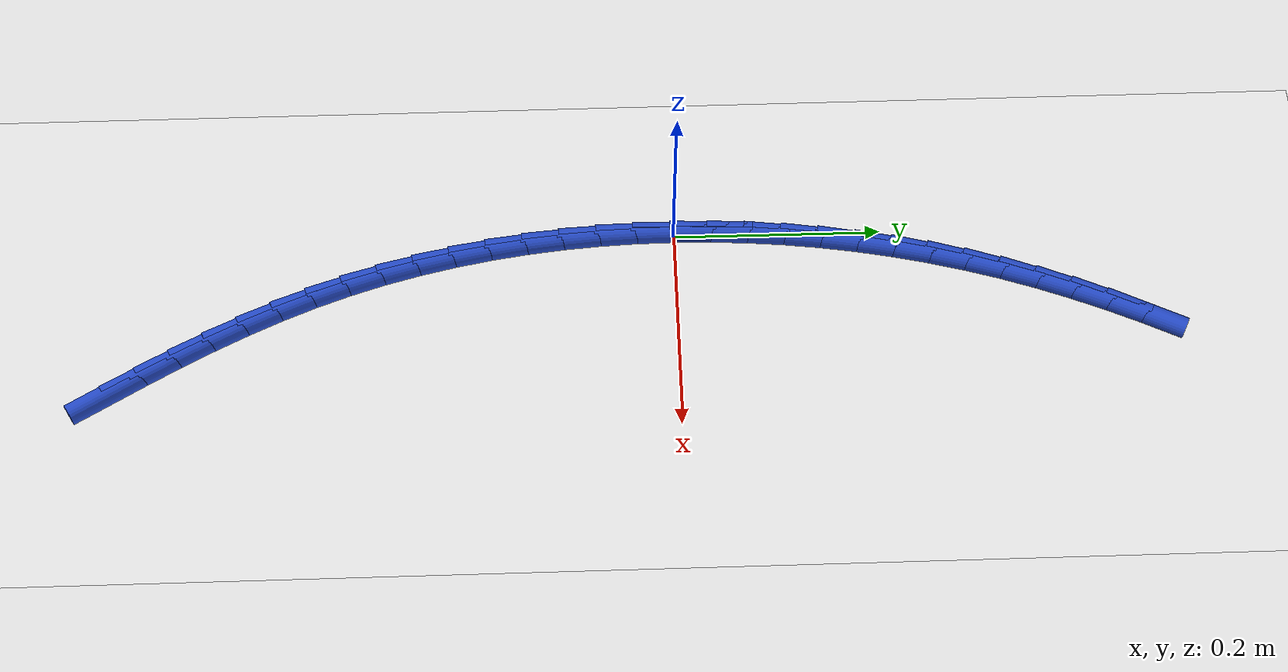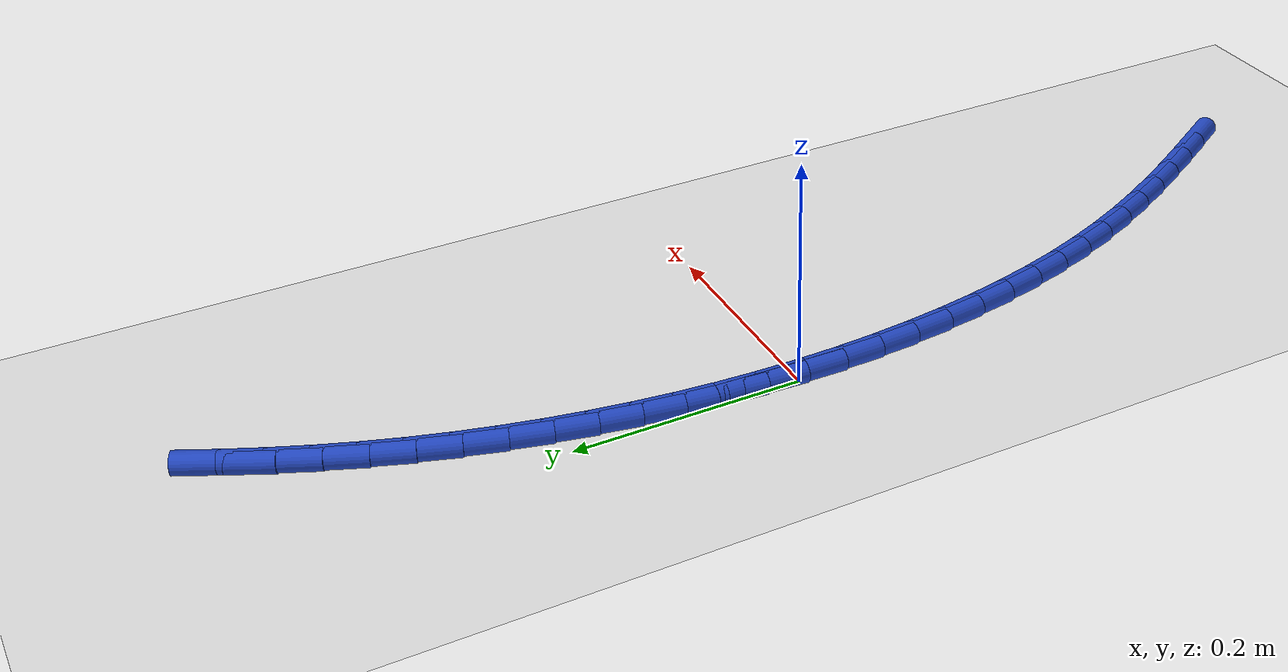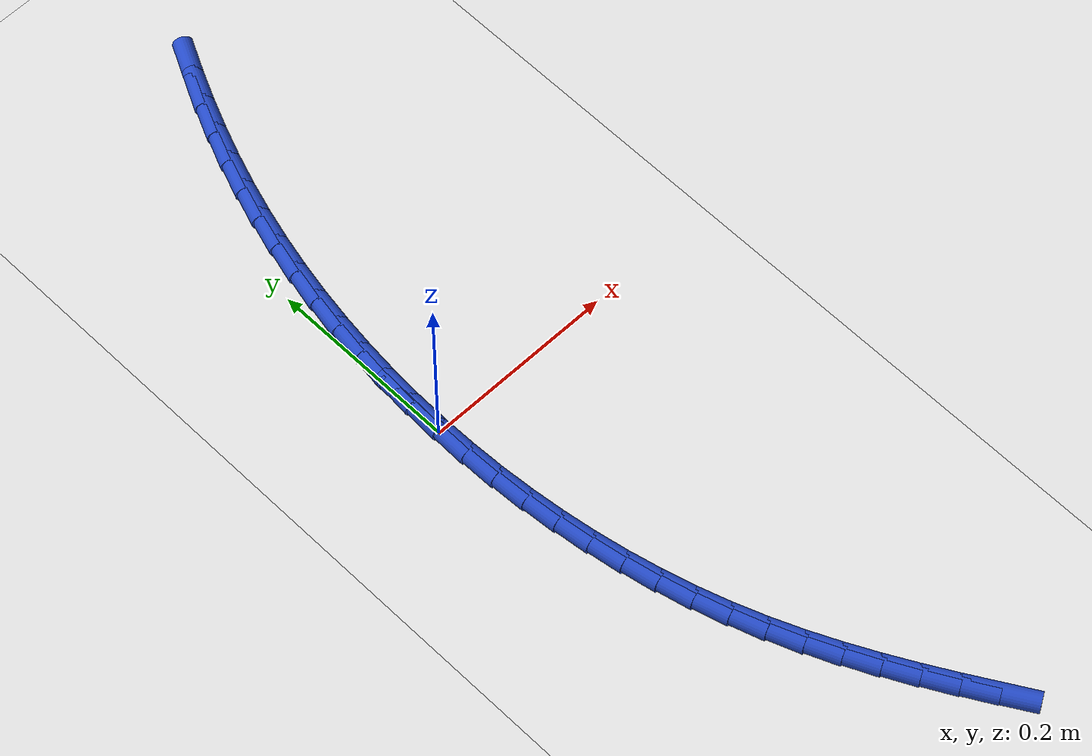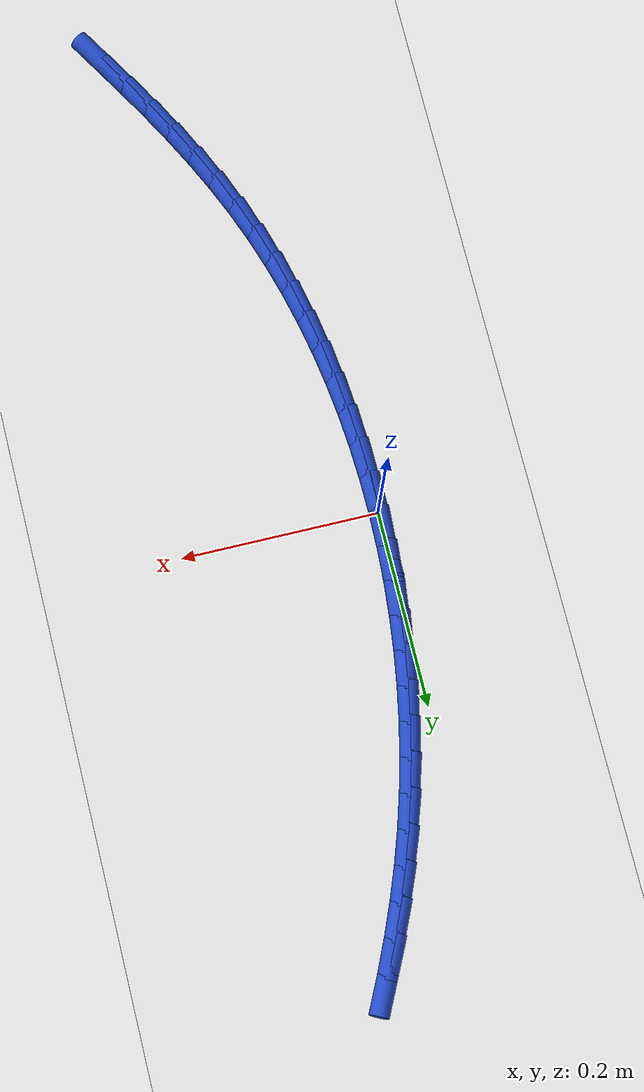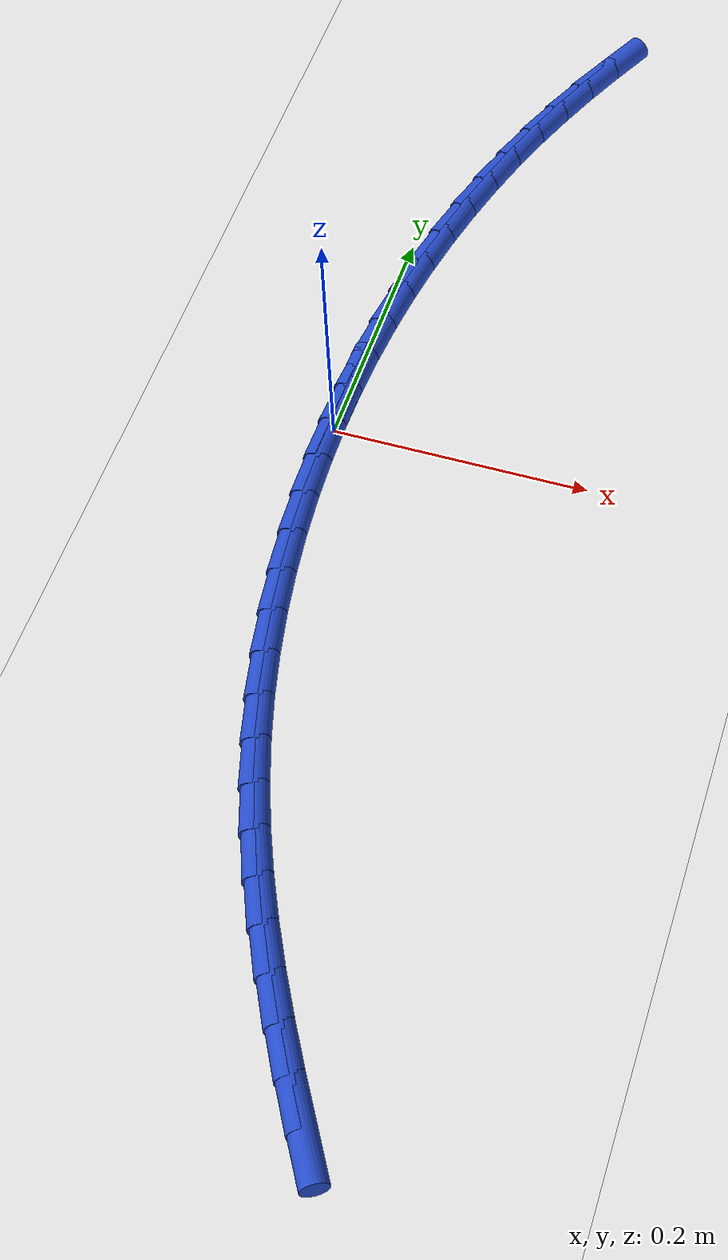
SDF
<sdf version="1.6">
 <world name="default">
  <model name="ground_plane">
   <static>1</static>
   <link name="link">
    <collision name="collision">
     <geometry><plane><normal>0 0 1</normal><size>100 100</size></plane></geometry>
     <surface><friction><ode><mu>100</mu><mu2>50</mu2></ode></friction></surface>
    </collision>
    <visual name="visual">
     <cast_shadows>0</cast_shadows>
     <geometry><plane><normal>0 0 1</normal><size>100 100</size></plane></geometry>
     <material>
      <script><uri>file://media/materials/scripts/gazebo.material</uri><name>Gazebo/WhiteGlow</name></script>
     </material>
    </visual>
   </link>
  </model>
  <model name="line">
   <link name="link_0">
    <pose>1.734723475976807e-17 -4.163336342344337e-17 0.01 0 1.57 1.5488083871747154</pose>
    <collision name="collision">
     <geometry><cylinder><radius>0.01</radius><length>0.08</length></cylinder></geometry>
    </collision>
    <visual name="visual">
     <material>
      <script><name>Gazebo/Blue</name><uri>file://media/materials/scripts/gazebo.material</uri></script>
     </material>
     <geometry><cylinder><radius>0.01</radius><length>0.08</length></cylinder></geometry>
    </visual>
   </link>
   <link name="link_1">
    <pose>0.0007827353338297464 0.03559265671994102 0.01 0 1.57 1.5147372161107195</pose>
    <collision name="collision">
     <geometry><cylinder><radius>0.01</radius><length>0.08</length></cylinder></geometry>
    </collision>
    <visual name="visual">
     <material>
      <script><name>Gazebo/Blue</name><uri>file://media/materials/scripts/gazebo.material</uri></script>
     </material>
     <geometry><cylinder><radius>0.01</radius><length>0.08</length></cylinder></geometry>
    </visual>
   </link>
   <link name="link_2">
    <pose>0.002774547305765217 0.0710859958950458 0.01 0 1.57 1.4806242775169383</pose>
    <collision name="collision">
     <geometry><cylinder><radius>0.01</radius><length>0.08</length></cylinder></geometry>
    </collision>
    <visual name="visual">
     <material>
      <script><name>Gazebo/Blue</name><uri>file://media/materials/scripts/gazebo.material</uri></script>
     </material>
     <geometry><cylinder><radius>0.01</radius><length>0.08</length></cylinder></geometry>
    </visual>
   </link>
   <link name="link_3">
    <pose>0.005970378362178981 0.10643136751774934 0.01 0 1.57 1.4464077638140527</pose>
    <collision name="collision">
     <geometry><cylinder><radius>0.01</radius><length>0.08</length></cylinder></geometry>
    </collision>
    <visual name="visual">
     <material>
      <script><name>Gazebo/Blue</name><uri>file://media/materials/scripts/gazebo.material</uri></script>
     </material>
     <geometry><cylinder><radius>0.01</radius><length>0.08</length></cylinder></geometry>
    </visual>
   </link>
   <link name="link_4">
    <pose>0.0103651709494436 0.14158012158048672 0.01 0 1.57 1.41202545025935</pose>
    <collision name="collision">
     <geometry><cylinder><radius>0.01</radius><length>0.08</length></cylinder></geometry>
    </collision>
    <visual name="visual">
     <material>
      <script><name>Gazebo/Blue</name><uri>file://media/materials/scripts/gazebo.material</uri></script>
     </material>
     <geometry><cylinder><radius>0.01</radius><length>0.08</length></cylinder></geometry>
    </visual>
   </link>
   <link name="link_5">
    <pose>0.01595386751393163 0.17648360807569297 0.01 0 1.57 1.3774149393160502</pose>
    <collision name="collision">
     <geometry><cylinder><radius>0.01</radius><length>0.08</length></cylinder></geometry>
    </collision>
    <visual name="visual">
     <material>
      <script><name>Gazebo/Blue</name><uri>file://media/materials/scripts/gazebo.material</uri></script>
     </material>
     <geometry><cylinder><radius>0.01</radius><length>0.08</length></cylinder></geometry>
    </visual>
   </link>
   <link name="link_6">
    <pose>0.022731410502015617 0.21109317699580313 0.01 0 1.57 1.3425139329978768</pose>
    <collision name="collision">
     <geometry><cylinder><radius>0.01</radius><length>0.08</length></cylinder></geometry>
    </collision>
    <visual name="visual">
     <material>
      <script><name>Gazebo/Blue</name><uri>file://media/materials/scripts/gazebo.material</uri></script>
     </material>
     <geometry><cylinder><radius>0.01</radius><length>0.08</length></cylinder></geometry>
    </visual>
   </link>
   <link name="link_7">
    <pose>0.03069274236006813 0.2453601783332523 0.01 0 1.57 1.3072605463599958</pose>
    <collision name="collision">
     <geometry><cylinder><radius>0.01</radius><length>0.08</length></cylinder></geometry>
    </collision>
    <visual name="visual">
     <material>
      <script><name>Gazebo/Blue</name><uri>file://media/materials/scripts/gazebo.material</uri></script>
     </material>
     <geometry><cylinder><radius>0.01</radius><length>0.08</length></cylinder></geometry>
    </visual>
   </link>
   <link name="link_8">
    <pose>0.03983280553446171 0.2792359620804754 0.01 0 1.57 1.2715936756296164</pose>
    <collision name="collision">
     <geometry><cylinder><radius>0.01</radius><length>0.08</length></cylinder></geometry>
    </collision>
    <visual name="visual">
     <material>
      <script><name>Gazebo/Blue</name><uri>file://media/materials/scripts/gazebo.material</uri></script>
     </material>
     <geometry><cylinder><radius>0.01</radius><length>0.08</length></cylinder></geometry>
    </visual>
   </link>
   <link name="link_9">
    <pose>0.050146542471568925 0.3126718782299076 0.01 0 1.57 1.2355716873333757</pose>
    <collision name="collision">
     <geometry><cylinder><radius>0.01</radius><length>0.08</length></cylinder></geometry>
    </collision>
    <visual name="visual">
     <material>
      <script><name>Gazebo/Blue</name><uri>file://media/materials/scripts/gazebo.material</uri></script>
     </material>
     <geometry><cylinder><radius>0.01</radius><length>0.08</length></cylinder></geometry>
    </visual>
   </link>
   <link name="link_10">
    <pose>0.06162587702154166 0.3456231535175326 0.01 0 1.57 1.200718942186717</pose>
    <collision name="collision">
     <geometry><cylinder><radius>0.01</radius><length>0.08</length></cylinder></geometry>
    </collision>
    <visual name="visual">
     <material>
      <script><name>Gazebo/Blue</name><uri>file://media/materials/scripts/gazebo.material</uri></script>
     </material>
     <geometry><cylinder><radius>0.01</radius><length>0.08</length></cylinder></geometry>
    </visual>
   </link>
   <link name="link_11">
    <pose>0.07422353779214312 0.37809535261523775 0.01 0 1.57 1.1682134684397811</pose>
    <collision name="collision">
     <geometry><cylinder><radius>0.01</radius><length>0.08</length></cylinder></geometry>
    </collision>
    <visual name="visual">
     <material>
      <script><name>Gazebo/Blue</name><uri>file://media/materials/scripts/gazebo.material</uri></script>
     </material>
     <geometry><cylinder><radius>0.01</radius><length>0.08</length></cylinder></geometry>
    </visual>
   </link>
   <link name="link_12">
    <pose>0.0878648702748198 0.4101292079721699 0.01 0 1.57 1.1381771511669305</pose>
    <collision name="collision">
     <geometry><cylinder><radius>0.01</radius><length>0.08</length></cylinder></geometry>
    </collision>
    <visual name="visual">
     <material>
      <script><name>Gazebo/Blue</name><uri>file://media/materials/scripts/gazebo.material</uri></script>
     </material>
     <geometry><cylinder><radius>0.01</radius><length>0.08</length></cylinder></geometry>
    </visual>
   </link>
   <link name="link_13">
    <pose>0.1024746594522828 0.44176617189149636 0.01 0 1.57 1.1106772916666237</pose>
    <collision name="collision">
     <geometry><cylinder><radius>0.01</radius><length>0.08</length></cylinder></geometry>
    </collision>
    <visual name="visual">
     <material>
      <script><name>Gazebo/Blue</name><uri>file://media/materials/scripts/gazebo.material</uri></script>
     </material>
     <geometry><cylinder><radius>0.01</radius><length>0.08</length></cylinder></geometry>
    </visual>
   </link>
   <link name="link_174">
    <pose>0.15863492472985044 -0.5307272570862417 0.01 0 1.57 -1.0303586815589252</pose>
    <collision name="collision">
     <geometry><cylinder><radius>0.01</radius><length>0.08</length></cylinder></geometry>
    </collision>
    <visual name="visual">
     <material>
      <script><name>Gazebo/Blue</name><uri>file://media/materials/scripts/gazebo.material</uri></script>
     </material>
     <geometry><cylinder><radius>0.01</radius><length>0.08</length></cylinder></geometry>
    </visual>
   </link>
   <link name="link_175">
    <pose>0.14040466448790132 -0.5003447396199807 0.01 0 1.57 -1.0480585267317708</pose>
    <collision name="collision">
     <geometry><cylinder><radius>0.01</radius><length>0.08</length></cylinder></geometry>
    </collision>
    <visual name="visual">
     <material>
      <script><name>Gazebo/Blue</name><uri>file://media/materials/scripts/gazebo.material</uri></script>
     </material>
     <geometry><cylinder><radius>0.01</radius><length>0.08</length></cylinder></geometry>
    </visual>
   </link>
   <link name="link_176">
    <pose>0.12286628026523749 -0.46990687636278544 0.01 0 1.57 -1.0707895175492743</pose>
    <collision name="collision">
     <geometry><cylinder><radius>0.01</radius><length>0.08</length></cylinder></geometry>
    </collision>
    <visual name="visual">
     <material>
      <script><name>Gazebo/Blue</name><uri>file://media/materials/scripts/gazebo.material</uri></script>
     </material>
     <geometry><cylinder><radius>0.01</radius><length>0.08</length></cylinder></geometry>
    </visual>
   </link>
   <link name="link_177">
    <pose>0.10614415614614019 -0.4392977288666527 0.01 0 1.57 -1.098556001412847</pose>
    <collision name="collision">
     <geometry><cylinder><radius>0.01</radius><length>0.08</length></cylinder></geometry>
    </collision>
    <visual name="visual">
     <material>
      <script><name>Gazebo/Blue</name><uri>file://media/materials/scripts/gazebo.material</uri></script>
     </material>
     <geometry><cylinder><radius>0.01</radius><length>0.08</length></cylinder></geometry>
    </visual>
   </link>
   <link name="link_178">
    <pose>0.09036267621489048 -0.40840135868357863 0.01 0 1.57 -1.1312870226040852</pose>
    <collision name="collision">
     <geometry><cylinder><radius>0.01</radius><length>0.08</length></cylinder></geometry>
    </collision>
    <visual name="visual">
     <material>
      <script><name>Gazebo/Blue</name><uri>file://media/materials/scripts/gazebo.material</uri></script>
     </material>
     <geometry><cylinder><radius>0.01</radius><length>0.08</length></cylinder></geometry>
    </visual>
   </link>
   <link name="link_179">
    <pose>0.07564622455576986 -0.3771018273655605 0.01 0 1.57 -1.168815979312282</pose>
    <collision name="collision">
     <geometry><cylinder><radius>0.01</radius><length>0.08</length></cylinder></geometry>
    </collision>
    <visual name="visual">
     <material>
      <script><name>Gazebo/Blue</name><uri>file://media/materials/scripts/gazebo.material</uri></script>
     </material>
     <geometry><cylinder><radius>0.01</radius><length>0.08</length></cylinder></geometry>
    </visual>
   </link>
   <link name="link_180">
    <pose>0.06211918525305878 -0.3452831964645934 0.01 0 1.57 -1.2108144572434756</pose>
    <collision name="collision">
     <geometry><cylinder><radius>0.01</radius><length>0.08</length></cylinder></geometry>
    </collision>
    <visual name="visual">
     <material>
      <script><name>Gazebo/Blue</name><uri>file://media/materials/scripts/gazebo.material</uri></script>
     </material>
     <geometry><cylinder><radius>0.01</radius><length>0.08</length></cylinder></geometry>
    </visual>
   </link>
   <link name="link_181">
    <pose>0.04990479603373641 -0.3128311018740087 0.01 0 1.57 -1.2546670634810286</pose>
    <collision name="collision">
     <geometry><cylinder><radius>0.01</radius><length>0.08</length></cylinder></geometry>
    </collision>
    <visual name="visual">
     <material>
      <script><name>Gazebo/Blue</name><uri>file://media/materials/scripts/gazebo.material</uri></script>
     </material>
     <geometry><cylinder><radius>0.01</radius><length>0.08</length></cylinder></geometry>
    </visual>
   </link>
   <link name="link_182">
    <pose>0.03907029043901038 -0.27970809242203143 0.01 0 1.57 -1.2970840347317492</pose>
    <collision name="collision">
     <geometry><cylinder><radius>0.01</radius><length>0.08</length></cylinder></geometry>
    </collision>
    <visual name="visual">
     <material>
      <script><name>Gazebo/Blue</name><uri>file://media/materials/scripts/gazebo.material</uri></script>
     </material>
     <geometry><cylinder><radius>0.01</radius><length>0.08</length></cylinder></geometry>
    </visual>
   </link>
   <link name="link_183">
    <pose>0.029602739562151 -0.2459868074426987 0.01 0 1.57 -1.3379464246867654</pose>
    <collision name="collision">
     <geometry><cylinder><radius>0.01</radius><length>0.08</length></cylinder></geometry>
    </collision>
    <visual name="visual">
     <material>
      <script><name>Gazebo/Blue</name><uri>file://media/materials/scripts/gazebo.material</uri></script>
     </material>
     <geometry><cylinder><radius>0.01</radius><length>0.08</length></cylinder></geometry>
    </visual>
   </link>
   <link name="link_184">
    <pose>0.021483040837391575 -0.21174836481908893 0.01 0 1.57 -1.3773956572469856</pose>
    <collision name="collision">
     <geometry><cylinder><radius>0.01</radius><length>0.08</length></cylinder></geometry>
    </collision>
    <visual name="visual">
     <material>
      <script><name>Gazebo/Blue</name><uri>file://media/materials/scripts/gazebo.material</uri></script>
     </material>
     <geometry><cylinder><radius>0.01</radius><length>0.08</length></cylinder></geometry>
    </visual>
   </link>
   <link name="link_185">
    <pose>0.01469209169896543 -0.1770738824342805 0.01 0 1.57 -1.4155778345171297</pose>
    <collision name="collision">
     <geometry><cylinder><radius>0.01</radius><length>0.08</length></cylinder></geometry>
    </collision>
    <visual name="visual">
     <material>
      <script><name>Gazebo/Blue</name><uri>file://media/materials/scripts/gazebo.material</uri></script>
     </material>
     <geometry><cylinder><radius>0.01</radius><length>0.08</length></cylinder></geometry>
    </visual>
   </link>
   <link name="link_186">
    <pose>0.009210789581105973 -0.14204447817135235 0.01 0 1.57 -1.4526416893544312</pose>
    <collision name="collision">
     <geometry><cylinder><radius>0.01</radius><length>0.08</length></cylinder></geometry>
    </collision>
    <visual name="visual">
     <material>
      <script><name>Gazebo/Blue</name><uri>file://media/materials/scripts/gazebo.material</uri></script>
     </material>
     <geometry><cylinder><radius>0.01</radius><length>0.08</length></cylinder></geometry>
    </visual>
   </link>
   <link name="link_187">
    <pose>0.0050200319180463086 -0.10674126991338141 0.01 0 1.57 -1.4887372523161073</pose>
    <collision name="collision">
     <geometry><cylinder><radius>0.01</radius><length>0.08</length></cylinder></geometry>
    </collision>
    <visual name="visual">
     <material>
      <script><name>Gazebo/Blue</name><uri>file://media/materials/scripts/gazebo.material</uri></script>
     </material>
     <geometry><cylinder><radius>0.01</radius><length>0.08</length></cylinder></geometry>
    </visual>
   </link>
   <link name="link_188">
    <pose>0.0021007161440198797 -0.07124537554344682 0.01 0 1.57 -1.5240151157068678</pose>
    <collision name="collision">
     <geometry><cylinder><radius>0.01</radius><length>0.08</length></cylinder></geometry>
    </collision>
    <visual name="visual">
     <material>
      <script><name>Gazebo/Blue</name><uri>file://media/materials/scripts/gazebo.material</uri></script>
     </material>
     <geometry><cylinder><radius>0.01</radius><length>0.08</length></cylinder></geometry>
    </visual>
   </link>
   <link name="link_189">
    <pose>0.00043373969326001 -0.03563791294462688 0.01 0 1.57 -1.558626189905256</pose>
    <collision name="collision">
     <geometry><cylinder><radius>0.01</radius><length>0.08</length></cylinder></geometry>
    </collision>
    <visual name="visual">
     <material>
      <script><name>Gazebo/Blue</name><uri>file://media/materials/scripts/gazebo.material</uri></script>
     </material>
     <geometry><cylinder><radius>0.01</radius><length>0.08</length></cylinder></geometry>
    </visual>
   </link>
   <link name="link_190">
    <pose>1.214306433183765e-17 9.020562075079397e-17 0.01 0 1.57 1.5488707904758876</pose>
    <collision name="collision">
     <geometry><cylinder><radius>0.01</radius><length>0.08</length></cylinder></geometry>
    </collision>
    <visual name="visual">
     <material>
      <script><name>Gazebo/Blue</name><uri>file://media/materials/scripts/gazebo.material</uri></script>
     </material>
     <geometry><cylinder><radius>0.01</radius><length>0.08</length></cylinder></geometry>
    </visual>
   </link>
   <link name="link_191">
    <pose>0.0007803944984732109 0.035587245407355694 0.01 0 1.57 1.5488707904758878</pose>
    <collision name="collision">
     <geometry><cylinder><radius>0.01</radius><length>0.08</length></cylinder></geometry>
    </collision>
    <visual name="visual">
     <material>
      <script><name>Gazebo/Blue</name><uri>file://media/materials/scripts/gazebo.material</uri></script>
     </material>
     <geometry><cylinder><radius>0.01</radius><length>0.08</length></cylinder></geometry>
    </visual>
   </link>
  </model>
 </world>
</sdf>
